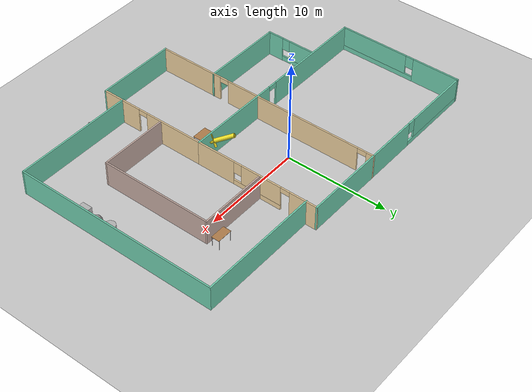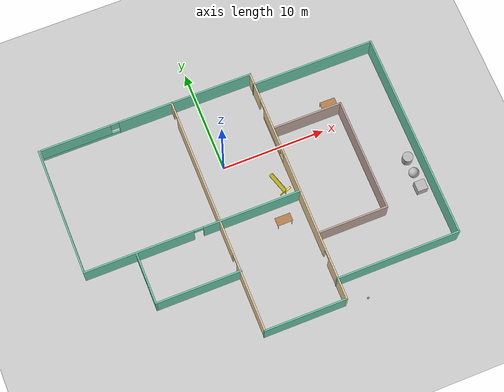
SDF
<sdf version="1.6">
 <world name="default">
  <model name="ground_plane">
   <static>1</static>
   <link name="link">
    <collision name="collision">
     <geometry><plane><normal>0 0 1</normal><size>100 100</size></plane></geometry>
     <surface>
      <contact><collide_bitmask>65535</collide_bitmask></contact>
      <friction><ode><mu>100</mu><mu2>50</mu2></ode></friction>
     </surface>
    </collision>
    <visual name="visual">
     <cast_shadows>0</cast_shadows>
     <geometry><plane><normal>0 0 1</normal><size>100 100</size></plane></geometry>
     <material>
      <script><uri>file://media/materials/scripts/gazebo.material</uri><name>Gazebo/Grey</name></script>
     </material>
    </visual>
   </link>
  </model>
  <model name="Building">
   <pose>0.87528 -4.65541 0 0 -0 0</pose>
   <link name="Wall_10">
    <pose>4.52008 5.41728 0 0 -0 1.5708</pose>
    <visual name="Wall_10_Visual_0">
     <pose>-4.3118 0 1.25 0 -0 0</pose>
     <geometry><box><size>3.8764 0.15 2.5</size></box></geometry>
     <material>
      <script><uri>file://media/materials/scripts/gazebo.material</uri><name>Gazebo/Grey</name></script>
      <ambient>0.921569 0.807843 0.615686 1</ambient>
     </material>
     <meta><layer>0</layer></meta>
    </visual>
    <collision name="Wall_10_Collision_0">
     <geometry><box><size>3.8764 0.15 2.5</size></box></geometry>
     <pose>-4.3118 0 1.25 0 -0 0</pose>
    </collision>
    <visual name="Wall_10_Visual_1">
     <pose>4.845 0 1.25 0 -0 0</pose>
     <geometry><box><size>2.80999 0.15 2.5</size></box></geometry>
     <material>
      <script><uri>file://media/materials/scripts/gazebo.material</uri><name>Gazebo/Grey</name></script>
      <ambient>0.921569 0.807843 0.615686 1</ambient>
     </material>
     <meta><layer>0</layer></meta>
    </visual>
    <collision name="Wall_10_Collision_1">
     <geometry><box><size>2.80999 0.15 2.5</size></box></geometry>
     <pose>4.845 0 1.25 0 -0 0</pose>
    </collision>
    <visual name="Wall_10_Visual_2">
     <pose>0.083203 0 0.25 0 -0 0</pose>
     <geometry><box><size>4.91361 0.15 0.5</size></box></geometry>
     <material>
      <script><uri>file://media/materials/scripts/gazebo.material</uri><name>Gazebo/Grey</name></script>
      <ambient>0.921569 0.807843 0.615686 1</ambient>
     </material>
     <meta><layer>0</layer></meta>
    </visual>
    <collision name="Wall_10_Collision_2">
     <geometry><box><size>4.91361 0.15 0.5</size></box></geometry>
     <pose>0.083203 0 0.25 0 -0 0</pose>
    </collision>
    <visual name="Wall_10_Visual_3">
     <pose>0.483203 0 1.5 0 -0 0</pose>
     <geometry><box><size>4.11361 0.15 2</size></box></geometry>
     <material>
      <script><uri>file://media/materials/scripts/gazebo.material</uri><name>Gazebo/Grey</name></script>
      <ambient>0.921569 0.807843 0.615686 1</ambient>
     </material>
     <meta><layer>0</layer></meta>
    </visual>
    <collision name="Wall_10_Collision_3">
     <geometry><box><size>4.11361 0.15 2</size></box></geometry>
     <pose>0.483203 0 1.5 0 -0 0</pose>
    </collision>
    <visual name="Wall_10_Visual_4">
     <pose>-1.9736 0 1.9 0 -0 0</pose>
     <geometry><box><size>0.8 0.15 1.2</size></box></geometry>
     <material>
      <script><uri>file://media/materials/scripts/gazebo.material</uri><name>Gazebo/Grey</name></script>
      <ambient>0.921569 0.807843 0.615686 1</ambient>
     </material>
     <meta><layer>0</layer></meta>
    </visual>
    <collision name="Wall_10_Collision_4">
     <geometry><box><size>0.8 0.15 1.2</size></box></geometry>
     <pose>-1.9736 0 1.9 0 -0 0</pose>
    </collision>
    <visual name="Wall_10_Visual_5">
     <pose>2.99001 0 2.25 0 -0 0</pose>
     <geometry><box><size>0.9 0.15 0.5</size></box></geometry>
     <material>
      <script><uri>file://media/materials/scripts/gazebo.material</uri><name>Gazebo/Grey</name></script>
      <ambient>0.921569 0.807843 0.615686 1</ambient>
     </material>
     <meta><layer>0</layer></meta>
    </visual>
    <collision name="Wall_10_Collision_5">
     <geometry><box><size>0.9 0.15 0.5</size></box></geometry>
     <pose>2.99001 0 2.25 0 -0 0</pose>
    </collision>
   </link>
   <link name="Wall_11">
    <pose>-5.77992 11.5923 0 0 -0 3.14159</pose>
    <visual name="Wall_11_Visual_0">
     <pose>-3.80191 0 1.25 0 -0 0</pose>
     <geometry><box><size>13.1462 0.15 2.5</size></box></geometry>
     <material>
      <script><uri>file://media/materials/scripts/gazebo.material</uri><name>Gazebo/Grey</name></script>
      <ambient>0.435294 0.796078 0.67451 1</ambient>
     </material>
     <meta><layer>0</layer></meta>
    </visual>
    <collision name="Wall_11_Collision_0">
     <geometry><box><size>13.1462 0.15 2.5</size></box></geometry>
     <pose>-3.80191 0 1.25 0 -0 0</pose>
    </collision>
    <visual name="Wall_11_Visual_1">
     <pose>6.57309 0 0.25 0 -0 0</pose>
     <geometry><box><size>7.60381 0.15 0.5</size></box></geometry>
     <material>
      <script><uri>file://media/materials/scripts/gazebo.material</uri><name>Gazebo/Grey</name></script>
      <ambient>0.435294 0.796078 0.67451 1</ambient>
     </material>
     <meta><layer>0</layer></meta>
    </visual>
    <collision name="Wall_11_Collision_1">
     <geometry><box><size>7.60381 0.15 0.5</size></box></geometry>
     <pose>6.57309 0 0.25 0 -0 0</pose>
    </collision>
    <visual name="Wall_11_Visual_2">
     <pose>6.97309 0 1.5 0 -0 0</pose>
     <geometry><box><size>6.80381 0.15 2</size></box></geometry>
     <material>
      <script><uri>file://media/materials/scripts/gazebo.material</uri><name>Gazebo/Grey</name></script>
      <ambient>0.435294 0.796078 0.67451 1</ambient>
     </material>
     <meta><layer>0</layer></meta>
    </visual>
    <collision name="Wall_11_Collision_2">
     <geometry><box><size>6.80381 0.15 2</size></box></geometry>
     <pose>6.97309 0 1.5 0 -0 0</pose>
    </collision>
    <visual name="Wall_11_Visual_3">
     <pose>3.17119 0 1.9 0 -0 0</pose>
     <geometry><box><size>0.8 0.15 1.2</size></box></geometry>
     <material>
      <script><uri>file://media/materials/scripts/gazebo.material</uri><name>Gazebo/Grey</name></script>
      <ambient>0.435294 0.796078 0.67451 1</ambient>
     </material>
     <meta><layer>0</layer></meta>
    </visual>
    <collision name="Wall_11_Collision_3">
     <geometry><box><size>0.8 0.15 1.2</size></box></geometry>
     <pose>3.17119 0 1.9 0 -0 0</pose>
    </collision>
   </link>
   <link name="Wall_13">
    <pose>-3.30365 0.032723 0 0 0 -1.5708</pose>
    <visual name="Wall_13_Visual_0">
     <pose>-11.2544 0 1.25 0 -0 0</pose>
     <geometry><box><size>0.791174 0.15 2.5</size></box></geometry>
     <material>
      <script><uri>file://media/materials/scripts/gazebo.material</uri><name>Gazebo/Grey</name></script>
      <ambient>0.921569 0.807843 0.615686 1</ambient>
     </material>
     <meta><layer>0</layer></meta>
    </visual>
    <collision name="Wall_13_Collision_0">
     <geometry><box><size>0.791174 0.15 2.5</size></box></geometry>
     <pose>-11.2544 0 1.25 0 -0 0</pose>
    </collision>
    <visual name="Wall_13_Visual_1">
     <pose>-2.92273 0 1.25 0 -0 0</pose>
     <geometry><box><size>14.0722 0.15 2.5</size></box></geometry>
     <material>
      <script><uri>file://media/materials/scripts/gazebo.material</uri><name>Gazebo/Grey</name></script>
      <ambient>0.921569 0.807843 0.615686 1</ambient>
     </material>
     <meta><layer>0</layer></meta>
    </visual>
    <collision name="Wall_13_Collision_1">
     <geometry><box><size>14.0722 0.15 2.5</size></box></geometry>
     <pose>-2.92273 0 1.25 0 -0 0</pose>
    </collision>
    <visual name="Wall_13_Visual_2">
     <pose>8.33168 0 1.25 0 -0 0</pose>
     <geometry><box><size>6.63663 0.15 2.5</size></box></geometry>
     <material>
      <script><uri>file://media/materials/scripts/gazebo.material</uri><name>Gazebo/Grey</name></script>
      <ambient>0.921569 0.807843 0.615686 1</ambient>
     </material>
     <meta><layer>0</layer></meta>
    </visual>
    <collision name="Wall_13_Collision_2">
     <geometry><box><size>6.63663 0.15 2.5</size></box></geometry>
     <pose>8.33168 0 1.25 0 -0 0</pose>
    </collision>
    <visual name="Wall_13_Visual_3">
     <pose>-10.4088 0 2.25 0 -0 0</pose>
     <geometry><box><size>0.9 0.15 0.5</size></box></geometry>
     <material>
      <script><uri>file://media/materials/scripts/gazebo.material</uri><name>Gazebo/Grey</name></script>
      <ambient>0.921569 0.807843 0.615686 1</ambient>
     </material>
     <meta><layer>0</layer></meta>
    </visual>
    <collision name="Wall_13_Collision_3">
     <geometry><box><size>0.9 0.15 0.5</size></box></geometry>
     <pose>-10.4088 0 2.25 0 -0 0</pose>
    </collision>
    <visual name="Wall_13_Visual_4">
     <pose>4.56337 0 2.25 0 -0 0</pose>
     <geometry><box><size>0.9 0.15 0.5</size></box></geometry>
     <material>
      <script><uri>file://media/materials/scripts/gazebo.material</uri><name>Gazebo/Grey</name></script>
      <ambient>0.921569 0.807843 0.615686 1</ambient>
     </material>
     <meta><layer>0</layer></meta>
    </visual>
    <collision name="Wall_13_Collision_4">
     <geometry><box><size>0.9 0.15 0.5</size></box></geometry>
     <pose>4.56337 0 2.25 0 -0 0</pose>
    </collision>
   </link>
   <link name="Wall_20">
    <pose>4.52008 -6.18272 0 0 0 -1.5708</pose>
    <visual name="Wall_20_Visual_0">
     <pose>-2.49911 0 1.25 0 -0 0</pose>
     <geometry><box><size>6.00178 0.15 2.5</size></box></geometry>
     <material>
      <script><uri>file://media/materials/scripts/gazebo.material</uri><name>Gazebo/Grey</name></script>
      <ambient>0.921569 0.807843 0.615686 1</ambient>
     </material>
     <meta><layer>0</layer></meta>
    </visual>
    <collision name="Wall_20_Collision_0">
     <geometry><box><size>6.00178 0.15 2.5</size></box></geometry>
     <pose>-2.49911 0 1.25 0 -0 0</pose>
    </collision>
    <visual name="Wall_20_Visual_1">
     <pose>3.45089 0 1.25 0 -0 0</pose>
     <geometry><box><size>4.09822 0.15 2.5</size></box></geometry>
     <material>
      <script><uri>file://media/materials/scripts/gazebo.material</uri><name>Gazebo/Grey</name></script>
      <ambient>0.921569 0.807843 0.615686 1</ambient>
     </material>
     <meta><layer>0</layer></meta>
    </visual>
    <collision name="Wall_20_Collision_1">
     <geometry><box><size>4.09822 0.15 2.5</size></box></geometry>
     <pose>3.45089 0 1.25 0 -0 0</pose>
    </collision>
    <visual name="Wall_20_Visual_2">
     <pose>0.951781 0 2.25 0 -0 0</pose>
     <geometry><box><size>0.9 0.15 0.5</size></box></geometry>
     <material>
      <script><uri>file://media/materials/scripts/gazebo.material</uri><name>Gazebo/Grey</name></script>
      <ambient>0.921569 0.807843 0.615686 1</ambient>
     </material>
     <meta><layer>0</layer></meta>
    </visual>
    <collision name="Wall_20_Collision_2">
     <geometry><box><size>0.9 0.15 0.5</size></box></geometry>
     <pose>0.951781 0 2.25 0 -0 0</pose>
    </collision>
   </link>
   <link name="Wall_21">
    <collision name="Wall_21_Collision">
     <geometry><box><size>8 0.15 2.5</size></box></geometry>
     <pose>0 0 1.25 0 -0 0</pose>
    </collision>
    <visual name="Wall_21_Visual">
     <pose>0 0 1.25 0 -0 0</pose>
     <geometry><box><size>8 0.15 2.5</size></box></geometry>
     <material>
      <script><uri>file://media/materials/scripts/gazebo.material</uri><name>Gazebo/Grey</name></script>
      <ambient>0.435294 0.796078 0.67451 1</ambient>
     </material>
     <meta><layer>0</layer></meta>
    </visual>
    <pose>0.595079 -11.6077 0 0 -0 3.14159</pose>
   </link>
   <link name="Wall_23">
    <collision name="Wall_23_Collision">
     <geometry><box><size>8.25 0.15 2.5</size></box></geometry>
     <pose>0 0 1.25 0 -0 0</pose>
    </collision>
    <visual name="Wall_23_Visual">
     <pose>0 0 1.25 0 -0 0</pose>
     <geometry><box><size>8.25 0.15 2.5</size></box></geometry>
     <material>
      <script><uri>file://media/materials/scripts/gazebo.material</uri><name>Gazebo/Grey</name></script>
      <ambient>0.435294 0.796078 0.67451 1</ambient>
     </material>
     <meta><layer>0</layer></meta>
    </visual>
    <pose>-7.30029 -5.76127 0 0 -0 3.14159</pose>
   </link>
   <link name="Wall_24">
    <pose>-11.3503 -3.33627 0 0 -0 1.5708</pose>
    <visual name="Wall_24_Visual_0">
     <pose>-1.68102 0 1.25 0 -0 0</pose>
     <geometry><box><size>1.63796 0.15 2.5</size></box></geometry>
     <material>
      <script><uri>file://media/materials/scripts/gazebo.material</uri><name>Gazebo/Grey</name></script>
      <ambient>0.435294 0.796078 0.67451 1</ambient>
     </material>
     <meta><layer>0</layer></meta>
    </visual>
    <collision name="Wall_24_Collision_0">
     <geometry><box><size>1.63796 0.15 2.5</size></box></geometry>
     <pose>-1.68102 0 1.25 0 -0 0</pose>
    </collision>
    <visual name="Wall_24_Visual_1">
     <pose>0.818982 0 0.25 0 -0 0</pose>
     <geometry><box><size>3.36204 0.15 0.5</size></box></geometry>
     <material>
      <script><uri>file://media/materials/scripts/gazebo.material</uri><name>Gazebo/Grey</name></script>
      <ambient>0.435294 0.796078 0.67451 1</ambient>
     </material>
     <meta><layer>0</layer></meta>
    </visual>
    <collision name="Wall_24_Collision_1">
     <geometry><box><size>3.36204 0.15 0.5</size></box></geometry>
     <pose>0.818982 0 0.25 0 -0 0</pose>
    </collision>
    <visual name="Wall_24_Visual_2">
     <pose>1.21898 0 1.5 0 -0 0</pose>
     <geometry><box><size>2.56203 0.15 2</size></box></geometry>
     <material>
      <script><uri>file://media/materials/scripts/gazebo.material</uri><name>Gazebo/Grey</name></script>
      <ambient>0.435294 0.796078 0.67451 1</ambient>
     </material>
     <meta><layer>0</layer></meta>
    </visual>
    <collision name="Wall_24_Collision_2">
     <geometry><box><size>2.56203 0.15 2</size></box></geometry>
     <pose>1.21898 0 1.5 0 -0 0</pose>
    </collision>
    <visual name="Wall_24_Visual_3">
     <pose>-0.462035 0 1.9 0 -0 0</pose>
     <geometry><box><size>0.8 0.15 1.2</size></box></geometry>
     <material>
      <script><uri>file://media/materials/scripts/gazebo.material</uri><name>Gazebo/Grey</name></script>
      <ambient>0.435294 0.796078 0.67451 1</ambient>
     </material>
     <meta><layer>0</layer></meta>
    </visual>
    <collision name="Wall_24_Collision_3">
     <geometry><box><size>0.8 0.15 1.2</size></box></geometry>
     <pose>-0.462035 0 1.9 0 -0 0</pose>
    </collision>
   </link>
   <link name="Wall_27">
    <collision name="Wall_27_Collision">
     <geometry><box><size>12 0.15 2.5</size></box></geometry>
     <pose>0 0 1.25 0 -0 0</pose>
    </collision>
    <visual name="Wall_27_Visual">
     <pose>0 0 1.25 0 -0 0</pose>
     <geometry><box><size>12 0.15 2.5</size></box></geometry>
     <material>
      <script><uri>file://media/materials/scripts/gazebo.material</uri><name>Gazebo/Grey</name></script>
      <ambient>0.435294 0.796078 0.67451 1</ambient>
     </material>
     <meta><layer>0</layer></meta>
    </visual>
    <pose>10.4049 10.5129 0 0 -0 0</pose>
   </link>
   <link name="Wall_28">
    <collision name="Wall_28_Collision">
     <geometry><box><size>20.25 0.15 2.5</size></box></geometry>
     <pose>0 0 1.25 0 -0 0</pose>
    </collision>
    <visual name="Wall_28_Visual">
     <pose>0 0 1.25 0 -0 0</pose>
     <geometry><box><size>20.25 0.15 2.5</size></box></geometry>
     <material>
      <script><uri>file://media/materials/scripts/gazebo.material</uri><name>Gazebo/Grey</name></script>
      <ambient>0.435294 0.796078 0.67451 1</ambient>
     </material>
     <meta><layer>0</layer></meta>
    </visual>
    <pose>16.3299 0.46285 0 0 0 -1.5708</pose>
   </link>
   <link name="Wall_29">
    <collision name="Wall_29_Collision">
     <geometry><box><size>12 0.15 2.5</size></box></geometry>
     <pose>0 0 1.25 0 -0 0</pose>
    </collision>
    <visual name="Wall_29_Visual">
     <pose>0 0 1.25 0 -0 0</pose>
     <geometry><box><size>12 0.15 2.5</size></box></geometry>
     <material>
      <script><uri>file://media/materials/scripts/gazebo.material</uri><name>Gazebo/Grey</name></script>
      <ambient>0.435294 0.796078 0.67451 1</ambient>
     </material>
     <meta><layer>0</layer></meta>
    </visual>
    <pose>10.4049 -9.58715 0 0 -0 3.14159</pose>
   </link>
   <link name="Wall_31">
    <collision name="Wall_31_Collision">
     <geometry><box><size>6.75 0.15 2.5</size></box></geometry>
     <pose>0 0 1.25 0 -0 0</pose>
    </collision>
    <visual name="Wall_31_Visual">
     <pose>0 0 1.25 0 -0 0</pose>
     <geometry><box><size>6.75 0.15 2.5</size></box></geometry>
     <material>
      <script><uri>file://media/materials/scripts/gazebo.material</uri><name>Gazebo/Grey</name></script>
      <ambient>0.760784 0.662745 0.627451 1</ambient>
     </material>
     <meta><layer>0</layer></meta>
    </visual>
    <pose>7.94855 5.79336 0 0 -0 0</pose>
   </link>
   <link name="Wall_32">
    <collision name="Wall_32_Collision">
     <geometry><box><size>11 0.15 2.5</size></box></geometry>
     <pose>0 0 1.25 0 -0 0</pose>
    </collision>
    <visual name="Wall_32_Visual">
     <pose>0 0 1.25 0 -0 0</pose>
     <geometry><box><size>11 0.15 2.5</size></box></geometry>
     <material>
      <script><uri>file://media/materials/scripts/gazebo.material</uri><name>Gazebo/Grey</name></script>
      <ambient>0.760784 0.662745 0.627451 1</ambient>
     </material>
     <meta><layer>0</layer></meta>
    </visual>
    <pose>11.2485 0.368355 0 0 0 -1.5708</pose>
   </link>
   <link name="Wall_33">
    <collision name="Wall_33_Collision">
     <geometry><box><size>6.75 0.15 2.5</size></box></geometry>
     <pose>0 0 1.25 0 -0 0</pose>
    </collision>
    <visual name="Wall_33_Visual">
     <pose>0 0 1.25 0 -0 0</pose>
     <geometry><box><size>6.75 0.15 2.5</size></box></geometry>
     <material>
      <script><uri>file://media/materials/scripts/gazebo.material</uri><name>Gazebo/Grey</name></script>
      <ambient>0.760784 0.662745 0.627451 1</ambient>
     </material>
     <meta><layer>0</layer></meta>
    </visual>
    <pose>7.94855 -5.05664 0 0 -0 3.14159</pose>
   </link>
   <link name="Wall_8">
    <pose>-16.3299 5.41728 0 0 0 -1.5708</pose>
    <visual name="Wall_8_Visual_0">
     <pose>-3.88424 0 1.25 0 -0 0</pose>
     <geometry><box><size>4.73152 0.15 2.5</size></box></geometry>
     <material>
      <script><uri>file://media/materials/scripts/gazebo.material</uri><name>Gazebo/Grey</name></script>
      <ambient>0.435294 0.796078 0.67451 1</ambient>
     </material>
     <meta><layer>0</layer></meta>
    </visual>
    <collision name="Wall_8_Collision_0">
     <geometry><box><size>4.73152 0.15 2.5</size></box></geometry>
     <pose>-3.88424 0 1.25 0 -0 0</pose>
    </collision>
    <visual name="Wall_8_Visual_1">
     <pose>2.36576 0 0.25 0 -0 0</pose>
     <geometry><box><size>7.76848 0.15 0.5</size></box></geometry>
     <material>
      <script><uri>file://media/materials/scripts/gazebo.material</uri><name>Gazebo/Grey</name></script>
      <ambient>0.435294 0.796078 0.67451 1</ambient>
     </material>
     <meta><layer>0</layer></meta>
    </visual>
    <collision name="Wall_8_Collision_1">
     <geometry><box><size>7.76848 0.15 0.5</size></box></geometry>
     <pose>2.36576 0 0.25 0 -0 0</pose>
    </collision>
    <visual name="Wall_8_Visual_2">
     <pose>2.76576 0 1.5 0 -0 0</pose>
     <geometry><box><size>6.96848 0.15 2</size></box></geometry>
     <material>
      <script><uri>file://media/materials/scripts/gazebo.material</uri><name>Gazebo/Grey</name></script>
      <ambient>0.435294 0.796078 0.67451 1</ambient>
     </material>
     <meta><layer>0</layer></meta>
    </visual>
    <collision name="Wall_8_Collision_2">
     <geometry><box><size>6.96848 0.15 2</size></box></geometry>
     <pose>2.76576 0 1.5 0 -0 0</pose>
    </collision>
    <visual name="Wall_8_Visual_3">
     <pose>-1.11848 0 1.9 0 -0 0</pose>
     <geometry><box><size>0.8 0.15 1.2</size></box></geometry>
     <material>
      <script><uri>file://media/materials/scripts/gazebo.material</uri><name>Gazebo/Grey</name></script>
      <ambient>0.435294 0.796078 0.67451 1</ambient>
     </material>
     <meta><layer>0</layer></meta>
    </visual>
    <collision name="Wall_8_Collision_3">
     <geometry><box><size>0.8 0.15 1.2</size></box></geometry>
     <pose>-1.11848 0 1.9 0 -0 0</pose>
    </collision>
   </link>
   <link name="Wall_9">
    <pose>-5.90492 -0.757723 0 0 -0 0</pose>
    <visual name="Wall_9_Visual_0">
     <pose>-5.20794 0 1.25 0 -0 0</pose>
     <geometry><box><size>10.5841 0.15 2.5</size></box></geometry>
     <material>
      <script><uri>file://media/materials/scripts/gazebo.material</uri><name>Gazebo/Grey</name></script>
      <ambient>0.435294 0.796078 0.67451 1</ambient>
     </material>
     <meta><layer>0</layer></meta>
    </visual>
    <collision name="Wall_9_Collision_0">
     <geometry><box><size>10.5841 0.15 2.5</size></box></geometry>
     <pose>-5.20794 0 1.25 0 -0 0</pose>
    </collision>
    <visual name="Wall_9_Visual_1">
     <pose>5.74206 0 1.25 0 -0 0</pose>
     <geometry><box><size>9.51588 0.15 2.5</size></box></geometry>
     <material>
      <script><uri>file://media/materials/scripts/gazebo.material</uri><name>Gazebo/Grey</name></script>
      <ambient>0.435294 0.796078 0.67451 1</ambient>
     </material>
     <meta><layer>0</layer></meta>
    </visual>
    <collision name="Wall_9_Collision_1">
     <geometry><box><size>9.51588 0.15 2.5</size></box></geometry>
     <pose>5.74206 0 1.25 0 -0 0</pose>
    </collision>
    <visual name="Wall_9_Visual_2">
     <pose>0.53412 0 2.25 0 -0 0</pose>
     <geometry><box><size>0.9 0.15 0.5</size></box></geometry>
     <material>
      <script><uri>file://media/materials/scripts/gazebo.material</uri><name>Gazebo/Grey</name></script>
      <ambient>0.435294 0.796078 0.67451 1</ambient>
     </material>
     <meta><layer>0</layer></meta>
    </visual>
    <collision name="Wall_9_Collision_2">
     <geometry><box><size>0.9 0.15 0.5</size></box></geometry>
     <pose>0.53412 0 2.25 0 -0 0</pose>
    </collision>
   </link>
   <static>1</static>
  </model>
  <model name="table">
   <static>1</static>
   <link name="link">
    <collision name="surface">
     <pose>0 0 1 0 -0 0</pose>
     <geometry><box><size>1.5 0.8 0.03</size></box></geometry>
     <surface><friction><ode><mu>0.6</mu><mu2>0.6</mu2></ode></friction></surface>
    </collision>
    <visual name="visual1">
     <pose>0 0 1 0 -0 0</pose>
     <geometry><box><size>1.5 0.8 0.03</size></box></geometry>
     <material>
      <script><uri>file://media/materials/scripts/gazebo.material</uri><name>Gazebo/Wood</name></script>
     </material>
    </visual>
    <collision name="front_left_leg">
     <pose>0.68 0.38 0.5 0 -0 0</pose>
     <geometry><cylinder><radius>0.02</radius><length>1</length></cylinder></geometry>
    </collision>
    <visual name="front_left_leg">
     <pose>0.68 0.38 0.5 0 -0 0</pose>
     <geometry><cylinder><radius>0.02</radius><length>1</length></cylinder></geometry>
     <material>
      <script><uri>file://media/materials/scripts/gazebo.material</uri><name>Gazebo/Grey</name></script>
     </material>
    </visual>
    <collision name="front_right_leg">
     <pose>0.68 -0.38 0.5 0 -0 0</pose>
     <geometry><cylinder><radius>0.02</radius><length>1</length></cylinder></geometry>
    </collision>
    <visual name="front_right_leg">
     <pose>0.68 -0.38 0.5 0 -0 0</pose>
     <geometry><cylinder><radius>0.02</radius><length>1</length></cylinder></geometry>
     <material>
      <script><uri>file://media/materials/scripts/gazebo.material</uri><name>Gazebo/Grey</name></script>
     </material>
    </visual>
    <collision name="back_right_leg">
     <pose>-0.68 -0.38 0.5 0 -0 0</pose>
     <geometry><cylinder><radius>0.02</radius><length>1</length></cylinder></geometry>
    </collision>
    <visual name="back_right_leg">
     <pose>-0.68 -0.38 0.5 0 -0 0</pose>
     <geometry><cylinder><radius>0.02</radius><length>1</length></cylinder></geometry>
     <material>
      <script><uri>file://media/materials/scripts/gazebo.material</uri><name>Gazebo/Grey</name></script>
     </material>
    </visual>
    <collision name="back_left_leg">
     <pose>-0.68 0.38 0.5 0 -0 0</pose>
     <geometry><cylinder><radius>0.02</radius><length>1</length></cylinder></geometry>
    </collision>
    <visual name="back_left_leg">
     <pose>-0.68 0.38 0.5 0 -0 0</pose>
     <geometry><cylinder><radius>0.02</radius><length>1</length></cylinder></geometry>
     <material>
      <script><uri>file://media/materials/scripts/gazebo.material</uri><name>Gazebo/Grey</name></script>
     </material>
    </visual>
   </link>
   <pose>3.17071 -6.99325 0 0 -0 0</pose>
  </model>
  <model name="submarine">
   <pose>3.76587 -3.9881 2.63737 2.52792 0.940189 1.29291</pose>
   <link name="body">
    <inertial>
     <mass>251.327</mass>
     <inertia><ixx>86.2891</ixx><ixy>0</ixy><ixz>0</ixz><iyy>86.2891</iyy><iyz>0</iyz><izz>5.02655</izz></inertia>
    </inertial>
    <visual name="body_visual">
     <geometry><cylinder><radius>0.2</radius><length>2</length></cylinder></geometry>
     <material>
      <script><uri>file://media/materials/scripts/gazebo.material</uri><name>Gazebo/Yellow</name></script>
     </material>
    </visual>
    <collision name="body_collision">
     <geometry><cylinder><radius>0.2</radius><length>2</length></cylinder></geometry>
    </collision>
    <visual name="spacer_visual">
     <pose>0 0 1.05855 0 -0 0</pose>
     <geometry><cylinder><radius>0.0933402</radius><length>0.127211</length></cylinder></geometry>
     <material>
      <script><uri>file://media/materials/scripts/gazebo.material</uri><name>Gazebo/Yellow</name></script>
     </material>
    </visual>
   </link>
   <link name="propeller">
    <pose>0 0 1.09 3.14159 -0 0</pose>
    <inertial>
     <mass>21.82</mass>
     <inertia>
      <ixx>0.459994</ixx>
      <ixy>0</ixy>
      <ixz>0</ixz>
      <iyy>0.459994</iyy>
      <iyz>0</iyz>
      <izz>0.909167</izz>
     </inertia>
    </inertial>
    <visual name="blade1_visual">
     <pose>0.34334 0 0 0.785398 -0 0</pose>
     <geometry><box><size>0.5 0.2 0.05455</size></box></geometry>
     <material>
      <script><uri>file://media/materials/scripts/gazebo.material</uri><name>Gazebo/Yellow</name></script>
     </material>
    </visual>
    <collision name="blade1_collision">
     <pose>0.34334 0 0 0.785398 -0 0</pose>
     <geometry><box><size>0.5 0.2 0.05455</size></box></geometry>
    </collision>
    <visual name="blade2_visual">
     <pose>0 0.34334 0 0.785398 0 1.5708</pose>
     <geometry><box><size>0.5 0.2 0.05455</size></box></geometry>
     <material>
      <script><uri>file://media/materials/scripts/gazebo.material</uri><name>Gazebo/Yellow</name></script>
     </material>
    </visual>
    <collision name="blade2_collision">
     <pose>0 0.34334 0 0.785398 0 1.5708</pose>
     <geometry><box><size>0.5 0.2 0.05455</size></box></geometry>
    </collision>
    <visual name="blade3_visual">
     <pose>-0.34334 -0 0 -0.785398 0 0</pose>
     <geometry><box><size>0.5 0.2 0.05455</size></box></geometry>
     <material>
      <script><uri>file://media/materials/scripts/gazebo.material</uri><name>Gazebo/Yellow</name></script>
     </material>
    </visual>
    <collision name="blade3_collision">
     <pose>-0.34334 -0 0 -0.785398 0 0</pose>
     <geometry><box><size>0.5 0.2 0.05455</size></box></geometry>
    </collision>
    <visual name="blade4_visual">
     <pose>-0 -0.34334 0 -0.785398 -0 1.5708</pose>
     <geometry><box><size>0.5 0.2 0.05455</size></box></geometry>
     <material>
      <script><uri>file://media/materials/scripts/gazebo.material</uri><name>Gazebo/Yellow</name></script>
     </material>
    </visual>
    <collision name="blade4_collision">
     <pose>-0 -0.34334 0 -0.785398 -0 1.5708</pose>
     <geometry><box><size>0.5 0.2 0.05455</size></box></geometry>
    </collision>
   </link>
   <joint name="spinning_joint" type="revolute">
    <parent>body</parent>
    <child>propeller</child>
    <axis>
     <xyz>0 0 1</xyz>
     <use_parent_model_frame>1</use_parent_model_frame>
     <limit><lower>-1e+12</lower><upper>1e+12</upper><effort>-1</effort><velocity>-1</velocity></limit>
     <dynamics><spring_reference>0</spring_reference><spring_stiffness>0</spring_stiffness></dynamics>
    </axis>
   </joint>
   <plugin name="submarine_propeller_1" filename="libLiftDragPlugin.so">
    <air_density>1000</air_density>
    <cla>1.2535816618911175</cla>
    <cla_stall>-1.4326647564469914</cla_stall>
    <cda>0</cda>
    <cda_stall>1.4326647564469914</cda_stall>
    <alpha_stall>1.396</alpha_stall>
    <a0>0</a0>
    <area>0.27637</area>
    <upward>0 -0.7071067811865476 -0.7071067811865475</upward>
    <forward>0 -0.7071067811865475 0.7071067811865476</forward>
    <link_name>propeller</link_name>
    <cp>0.35 0 0</cp>
   </plugin>
   <plugin name="submarine_propeller_2" filename="libLiftDragPlugin.so">
    <air_density>1000</air_density>
    <cla>1.2535816618911175</cla>
    <cla_stall>-1.4326647564469914</cla_stall>
    <cda>0</cda>
    <cda_stall>1.4326647564469914</cda_stall>
    <alpha_stall>1.396</alpha_stall>
    <a0>0</a0>
    <area>0.27637</area>
    <upward>-0.7071067811865475 0 -0.7071067811865476</upward>
    <forward>-0.7071067811865476 0 0.7071067811865475</forward>
    <link_name>propeller</link_name>
    <cp>0 -0.35 0</cp>
   </plugin>
   <plugin name="submarine_propeller_3" filename="libLiftDragPlugin.so">
    <air_density>1000</air_density>
    <cla>1.2535816618911175</cla>
    <cla_stall>-1.4326647564469914</cla_stall>
    <cda>0</cda>
    <cda_stall>1.4326647564469914</cda_stall>
    <alpha_stall>1.396</alpha_stall>
    <a0>0</a0>
    <area>0.27637</area>
    <upward>0 0.7071067811865475 -0.7071067811865476</upward>
    <forward>0 -0.7071067811865476 -0.7071067811865475</forward>
    <link_name>propeller</link_name>
    <cp>-0.35 0 0</cp>
   </plugin>
   <plugin name="submarine_propeller_4" filename="libLiftDragPlugin.so">
    <air_density>1000</air_density>
    <cla>1.2535816618911175</cla>
    <cla_stall>-1.4326647564469914</cla_stall>
    <cda>0</cda>
    <cda_stall>1.4326647564469914</cda_stall>
    <alpha_stall>1.396</alpha_stall>
    <a0>0</a0>
    <area>0.27637</area>
    <upward>0.7071067811865476 0 -0.7071067811865475</upward>
    <forward>0.7071067811865475 0 0.7071067811865476</forward>
    <link_name>propeller</link_name>
    <cp>0 0.35 0</cp>
   </plugin>
   <plugin name="buoyancy" filename="libBuoyancyPlugin.so"><fluid_density>1000</fluid_density></plugin>
  </model>
  <model name="textured_shapes">
   <pose>16.1686 -7.08415 0.5 0 -0 0</pose>
   <link name="box">
    <pose>0 -1.5 0 0 -0 0</pose>
    <collision name="collision"><geometry><box><size>1 1 1</size></box></geometry></collision>
    <visual name="visual">
     <geometry><box><size>1 1 1</size></box></geometry>
     <material>
      <script>
       <uri>model://textured_shapes/materials/scripts</uri>
       <uri>model://textured_shapes/materials/textures</uri>
       <name>TexturedShape/Squares</name>
      </script>
     </material>
    </visual>
    <inertial>
     <inertia><ixx>1</ixx><ixy>0</ixy><ixz>0</ixz><iyy>1</iyy><iyz>0</iyz><izz>1</izz></inertia>
     <mass>1</mass>
    </inertial>
   </link>
   <link name="sphere">
    <collision name="collision"><geometry><sphere><radius>0.5</radius></sphere></geometry></collision>
    <visual name="visual">
     <geometry><sphere><radius>0.5</radius></sphere></geometry>
     <material>
      <script>
       <uri>model://textured_shapes/materials/scripts</uri>
       <uri>model://textured_shapes/materials/textures</uri>
       <name>TexturedShape/Squares</name>
      </script>
     </material>
    </visual>
    <inertial>
     <inertia><ixx>1</ixx><ixy>0</ixy><ixz>0</ixz><iyy>1</iyy><iyz>0</iyz><izz>1</izz></inertia>
     <mass>1</mass>
    </inertial>
   </link>
   <link name="cylinder">
    <pose>0 1.5 0 0 -0 0</pose>
    <collision name="collision">
     <geometry><cylinder><radius>0.5</radius><length>1</length></cylinder></geometry>
    </collision>
    <visual name="visual">
     <geometry><cylinder><radius>0.5</radius><length>1</length></cylinder></geometry>
     <material>
      <script>
       <uri>model://textured_shapes/materials/scripts</uri>
       <uri>model://textured_shapes/materials/textures</uri>
       <name>TexturedShape/Squares</name>
      </script>
     </material>
    </visual>
    <inertial>
     <inertia><ixx>1</ixx><ixy>0</ixy><ixz>0</ixz><iyy>1</iyy><iyz>0</iyz><izz>1</izz></inertia>
     <mass>1</mass>
    </inertial>
   </link>
  </model>
  <model name="table_1">
   <static>1</static>
   <link name="link">
    <collision name="surface">
     <pose>0 0 1 0 -0 0</pose>
     <geometry><box><size>1.5 0.8 0.03</size></box></geometry>
     <surface><friction><ode><mu>0.6</mu><mu2>0.6</mu2></ode></friction></surface>
    </collision>
    <visual name="visual1">
     <pose>0 0 1 0 -0 0</pose>
     <geometry><box><size>1.5 0.8 0.03</size></box></geometry>
     <material>
      <script><uri>file://media/materials/scripts/gazebo.material</uri><name>Gazebo/Wood</name></script>
     </material>
    </visual>
    <collision name="front_left_leg">
     <pose>0.68 0.38 0.5 0 -0 0</pose>
     <geometry><cylinder><radius>0.02</radius><length>1</length></cylinder></geometry>
    </collision>
    <visual name="front_left_leg">
     <pose>0.68 0.38 0.5 0 -0 0</pose>
     <geometry><cylinder><radius>0.02</radius><length>1</length></cylinder></geometry>
     <material>
      <script><uri>file://media/materials/scripts/gazebo.material</uri><name>Gazebo/Grey</name></script>
     </material>
    </visual>
    <collision name="front_right_leg">
     <pose>0.68 -0.38 0.5 0 -0 0</pose>
     <geometry><cylinder><radius>0.02</radius><length>1</length></cylinder></geometry>
    </collision>
    <visual name="front_right_leg">
     <pose>0.68 -0.38 0.5 0 -0 0</pose>
     <geometry><cylinder><radius>0.02</radius><length>1</length></cylinder></geometry>
     <material>
      <script><uri>file://media/materials/scripts/gazebo.material</uri><name>Gazebo/Grey</name></script>
     </material>
    </visual>
    <collision name="back_right_leg">
     <pose>-0.68 -0.38 0.5 0 -0 0</pose>
     <geometry><cylinder><radius>0.02</radius><length>1</length></cylinder></geometry>
    </collision>
    <visual name="back_right_leg">
     <pose>-0.68 -0.38 0.5 0 -0 0</pose>
     <geometry><cylinder><radius>0.02</radius><length>1</length></cylinder></geometry>
     <material>
      <script><uri>file://media/materials/scripts/gazebo.material</uri><name>Gazebo/Grey</name></script>
     </material>
    </visual>
    <collision name="back_left_leg">
     <pose>-0.68 0.38 0.5 0 -0 0</pose>
     <geometry><cylinder><radius>0.02</radius><length>1</length></cylinder></geometry>
    </collision>
    <visual name="back_left_leg">
     <pose>-0.68 0.38 0.5 0 -0 0</pose>
     <geometry><cylinder><radius>0.02</radius><length>1</length></cylinder></geometry>
     <material>
      <script><uri>file://media/materials/scripts/gazebo.material</uri><name>Gazebo/Grey</name></script>
     </material>
    </visual>
   </link>
   <pose>11.3619 1.9873 0 0 -0 0</pose>
  </model>
  <model name="my_ball">
   <link name="link_0">
    <inertial>
     <mass>1</mass>
     <inertia><ixx>0.1</ixx><ixy>0</ixy><ixz>0</ixz><iyy>0.1</iyy><iyz>0</iyz><izz>0.1</izz></inertia>
    </inertial>
    <visual name="visual">
     <geometry><sphere><radius>0.1</radius></sphere></geometry>
     <material>
      <lighting>1</lighting>
      <script><uri>file://media/materials/scripts/gazebo.material</uri><name>Gazebo/Grey</name></script>
      <shader type="pixel"><normal_map>__default__</normal_map></shader>
      <ambient>1 1 1 1</ambient>
      <diffuse>1 1 1 1</diffuse>
      <specular>1 1 1 1</specular>
      <emissive>1 1 1 1</emissive>
     </material>
    </visual>
    <collision name="collision">
     <geometry><sphere><radius>0.1</radius></sphere></geometry>
     <surface>
      <friction>
       <ode><mu>1</mu><mu2>1</mu2><fdir1>0 0 0</fdir1><slip1>0</slip1><slip2>0</slip2></ode>
       <torsional>
        <coefficient>1</coefficient>
        <patch_radius>0</patch_radius>
        <surface_radius>0</surface_radius>
        <use_patch_radius>1</use_patch_radius>
        <ode><slip>0</slip></ode>
       </torsional>
      </friction>
      <bounce><restitution_coefficient>0</restitution_coefficient><threshold>1e+06</threshold></bounce>
      <contact>
       <collide_without_contact>0</collide_without_contact>
       <collide_without_contact_bitmask>1</collide_without_contact_bitmask>
       <collide_bitmask>1</collide_bitmask>
       <ode>
        <soft_cfm>0</soft_cfm>
        <soft_erp>0.2</soft_erp>
        <kp>1e+13</kp>
        <kd>1</kd>
        <max_vel>0.01</max_vel>
        <min_depth>0</min_depth>
       </ode>
       <bullet>
        <split_impulse>1</split_impulse>
        <split_impulse_penetration_threshold>-0.01</split_impulse_penetration_threshold>
        <soft_cfm>0</soft_cfm>
        <soft_erp>0.2</soft_erp>
        <kp>1e+13</kp>
        <kd>1</kd>
       </bullet>
      </contact>
     </surface>
    </collision>
   </link>
   <static>0</static>
   <pose>7.59548 -16.4196 0.1 0 -0 0</pose>
  </model>
 </world>
</sdf>
